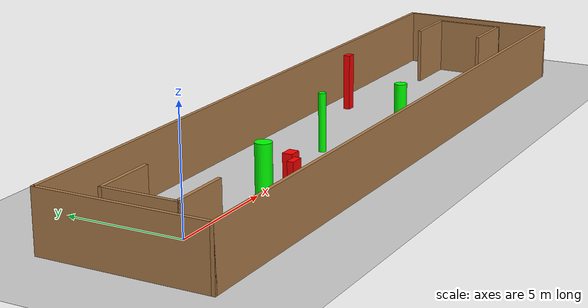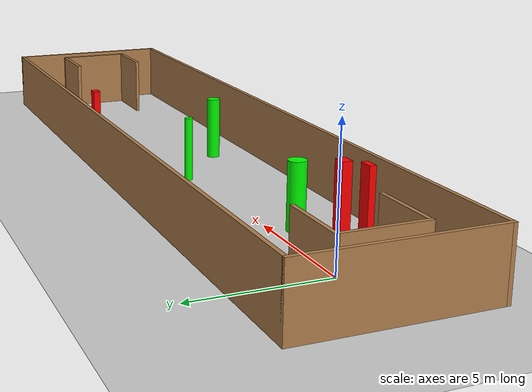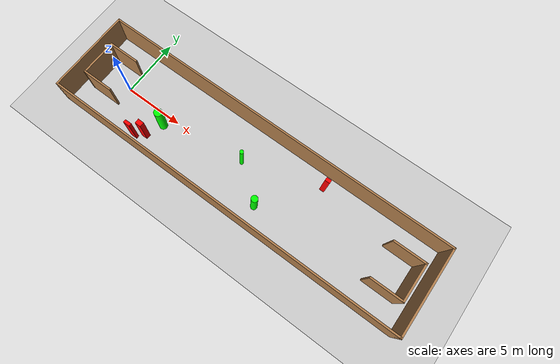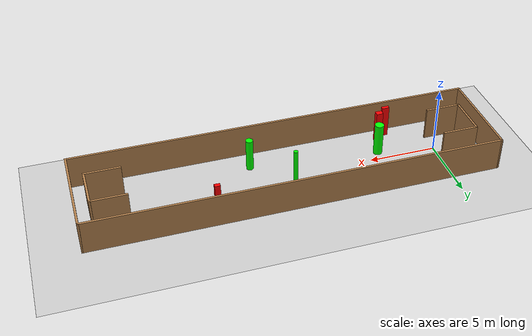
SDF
<sdf version="1.7">
 <world name="default">
  <light name="sun" type="directional">
   <pose>0 0 10 0 -0 0</pose>
   <diffuse>0.8 0.8 0.8 1</diffuse>
   <specular>0.2 0.2 0.2 1</specular>
   <attenuation>
    <range>1000</range>
    <constant>0.9</constant>
    <linear>0.01</linear>
    <quadratic>0.001</quadratic>
   </attenuation>
   <direction>-0.5 0.1 -0.9</direction>
   <spot><inner_angle>0</inner_angle><outer_angle>0</outer_angle><falloff>0</falloff></spot>
  </light>
  <model name="ground_plane">
   <static>1</static>
   <link name="link">
    <collision name="collision">
     <geometry><plane><normal>0 0 1</normal><size>100 100</size></plane></geometry>
     <surface>
      <contact><collide_bitmask>65535</collide_bitmask></contact>
      <friction><ode><mu>100</mu><mu2>50</mu2></ode></friction>
     </surface>
    </collision>
    <visual name="visual">
     <cast_shadows>0</cast_shadows>
     <geometry><plane><normal>0 0 1</normal><size>100 100</size></plane></geometry>
     <material>
      <script><uri>file://media/materials/scripts/gazebo.material</uri><name>Gazebo/Grey</name></script>
     </material>
    </visual>
   </link>
  </model>
  <gravity>0 0 -9.8</gravity>
  <magnetic_field>6e-06 2.3e-05 -4.2e-05</magnetic_field>
  <atmosphere type="adiabatic"/>
  <physics type="ode">
   <max_step_size>0.001</max_step_size>
   <real_time_factor>1</real_time_factor>
   <real_time_update_rate>1000</real_time_update_rate>
  </physics>
  <scene><ambient>0.4 0.4 0.4 1</ambient><background>0.7 0.7 0.7 1</background><shadows>1</shadows></scene>
  <spherical_coordinates>
   <surface_model>EARTH_WGS84</surface_model>
   <latitude_deg>0</latitude_deg>
   <longitude_deg>0</longitude_deg>
   <elevation>0</elevation>
   <heading_deg>0</heading_deg>
  </spherical_coordinates>
  <model name="my_base_walls">
   <link name="Wall_0">
    <collision name="Wall_0_Collision">
     <geometry><box><size>7.15 0.15 2.5</size></box></geometry>
     <pose>0 0 1.25 0 -0 0</pose>
    </collision>
    <visual name="Wall_0_Visual">
     <pose>0 0 1.25 0 -0 0</pose>
     <geometry><box><size>7.15 0.15 2.5</size></box></geometry>
     <material>
      <script><uri>file://media/materials/scripts/gazebo.material</uri><name>Gazebo/Wood</name></script>
      <ambient>1 1 1 1</ambient>
     </material>
     <meta><layer>0</layer></meta>
    </visual>
    <pose>-15 0 0 0 -0 1.5708</pose>
   </link>
   <link name="Wall_10">
    <collision name="Wall_10_Collision">
     <geometry><box><size>2.65 0.15 2.5</size></box></geometry>
     <pose>0 0 1.25 0 -0 0</pose>
    </collision>
    <visual name="Wall_10_Visual">
     <pose>0 0 1.25 0 -0 0</pose>
     <geometry><box><size>2.65 0.15 2.5</size></box></geometry>
     <material>
      <script><uri>file://media/materials/scripts/gazebo.material</uri><name>Gazebo/Wood</name></script>
      <ambient>1 1 1 1</ambient>
     </material>
     <meta><layer>0</layer></meta>
    </visual>
    <pose>-12.75 -1.5 0 0 -0 0</pose>
   </link>
   <link name="Wall_12">
    <collision name="Wall_12_Collision">
     <geometry><box><size>2.65 0.15 2.5</size></box></geometry>
     <pose>0 0 1.25 0 -0 0</pose>
    </collision>
    <visual name="Wall_12_Visual">
     <pose>0 0 1.25 0 -0 0</pose>
     <geometry><box><size>2.65 0.15 2.5</size></box></geometry>
     <material>
      <script><uri>file://media/materials/scripts/gazebo.material</uri><name>Gazebo/Wood</name></script>
      <ambient>1 1 1 1</ambient>
     </material>
     <meta><layer>0</layer></meta>
    </visual>
    <pose>-12.75 1.5 0 0 -0 0</pose>
   </link>
   <link name="Wall_14">
    <collision name="Wall_14_Collision">
     <geometry><box><size>3.15 0.15 2.5</size></box></geometry>
     <pose>0 0 1.25 0 -0 0</pose>
    </collision>
    <visual name="Wall_14_Visual">
     <pose>0 0 1.25 0 -0 0</pose>
     <geometry><box><size>3.15 0.15 2.5</size></box></geometry>
     <material>
      <script><uri>file://media/materials/scripts/gazebo.material</uri><name>Gazebo/Wood</name></script>
      <ambient>1 1 1 1</ambient>
     </material>
     <meta><layer>0</layer></meta>
    </visual>
    <pose>14 0 0 0 -0 -1.5708</pose>
   </link>
   <link name="Wall_15">
    <collision name="Wall_15_Collision">
     <geometry><box><size>2.65 0.15 2.5</size></box></geometry>
     <pose>0 0 1.25 0 -0 0</pose>
    </collision>
    <visual name="Wall_15_Visual">
     <pose>0 0 1.25 0 -0 0</pose>
     <geometry><box><size>2.65 0.15 2.5</size></box></geometry>
     <material>
      <script><uri>file://media/materials/scripts/gazebo.material</uri><name>Gazebo/Wood</name></script>
      <ambient>1 1 1 1</ambient>
     </material>
     <meta><layer>0</layer></meta>
    </visual>
    <pose>12.75 -1.5 0 0 -0 3.14159</pose>
   </link>
   <link name="Wall_17">
    <collision name="Wall_17_Collision">
     <geometry><box><size>2.65 0.15 2.5</size></box></geometry>
     <pose>0 0 1.25 0 -0 0</pose>
    </collision>
    <visual name="Wall_17_Visual">
     <pose>0 0 1.25 0 -0 0</pose>
     <geometry><box><size>2.65 0.15 2.5</size></box></geometry>
     <material>
      <script><uri>file://media/materials/scripts/gazebo.material</uri><name>Gazebo/Wood</name></script>
      <ambient>1 1 1 1</ambient>
     </material>
     <meta><layer>0</layer></meta>
    </visual>
    <pose>12.75 1.5 0 0 -0 3.14159</pose>
   </link>
   <link name="Wall_2">
    <collision name="Wall_2_Collision">
     <geometry><box><size>30.15 0.15 2.5</size></box></geometry>
     <pose>0 0 1.25 0 -0 0</pose>
    </collision>
    <visual name="Wall_2_Visual">
     <pose>0 0 1.25 0 -0 0</pose>
     <geometry><box><size>30.15 0.15 2.5</size></box></geometry>
     <material>
      <script><uri>file://media/materials/scripts/gazebo.material</uri><name>Gazebo/Wood</name></script>
      <ambient>1 1 1 1</ambient>
     </material>
     <meta><layer>0</layer></meta>
    </visual>
    <pose>-0 -3.5 0 0 -0 0</pose>
   </link>
   <link name="Wall_4">
    <collision name="Wall_4_Collision">
     <geometry><box><size>30.15 0.15 2.5</size></box></geometry>
     <pose>0 0 1.25 0 -0 0</pose>
    </collision>
    <visual name="Wall_4_Visual">
     <pose>0 0 1.25 0 -0 0</pose>
     <geometry><box><size>30.15 0.15 2.5</size></box></geometry>
     <material>
      <script><uri>file://media/materials/scripts/gazebo.material</uri><name>Gazebo/Wood</name></script>
      <ambient>1 1 1 1</ambient>
     </material>
     <meta><layer>0</layer></meta>
    </visual>
    <pose>-0 3.5 0 0 -0 0</pose>
   </link>
   <link name="Wall_6">
    <collision name="Wall_6_Collision">
     <geometry><box><size>7.15 0.15 2.5</size></box></geometry>
     <pose>0 0 1.25 0 -0 0</pose>
    </collision>
    <visual name="Wall_6_Visual">
     <pose>0 0 1.25 0 -0 0</pose>
     <geometry><box><size>7.15 0.15 2.5</size></box></geometry>
     <material>
      <script><uri>file://media/materials/scripts/gazebo.material</uri><name>Gazebo/Wood</name></script>
      <ambient>1 1 1 1</ambient>
     </material>
     <meta><layer>0</layer></meta>
    </visual>
    <pose>15 0 0 0 -0 -1.5708</pose>
   </link>
   <link name="Wall_9">
    <collision name="Wall_9_Collision">
     <geometry><box><size>3.15 0.15 2.5</size></box></geometry>
     <pose>0 0 1.25 0 -0 0</pose>
    </collision>
    <visual name="Wall_9_Visual">
     <pose>0 0 1.25 0 -0 0</pose>
     <geometry><box><size>3.15 0.15 2.5</size></box></geometry>
     <material>
      <script><uri>file://media/materials/scripts/gazebo.material</uri><name>Gazebo/Wood</name></script>
      <ambient>1 1 1 1</ambient>
     </material>
     <meta><layer>0</layer></meta>
    </visual>
    <pose>-14 0 0 0 -0 -1.5708</pose>
   </link>
   <static>1</static>
   <pose>11.5 0 0 0 -0 0</pose>
  </model>
  <model name="cylinder1">
   <static>1</static>
   <link name="link">
    <inertial>
     <mass>1</mass>
     <inertia><ixx>0.5</ixx><ixy>0</ixy><ixz>0</ixz><iyy>0.5</iyy><iyz>0</iyz><izz>1</izz></inertia>
    </inertial>
    <collision name="collision">
     <geometry><cylinder><radius>0.1609751300408309</radius><length>2.5</length></cylinder></geometry>
    </collision>
    <visual name="visual">
     <geometry><cylinder><radius>0.1609751300408309</radius><length>2.5</length></cylinder></geometry>
     <material>
      <ambient>0 1 0 1</ambient>
      <diffuse>0 1 0 1</diffuse>
      <specular>0.1 0.1 0.1 1</specular>
      <emissive>0 0 0 0</emissive>
     </material>
    </visual>
   </link>
   <pose>10.947049865914876 0.4323442922492946 1.25 0 0 0</pose>
  </model>
  <model name="cylinder2">
   <static>1</static>
   <link name="link">
    <inertial>
     <mass>1</mass>
     <inertia><ixx>0.5</ixx><ixy>0</ixy><ixz>0</ixz><iyy>0.5</iyy><iyz>0</iyz><izz>1</izz></inertia>
    </inertial>
    <collision name="collision">
     <geometry><cylinder><radius>0.33409682309089644</radius><length>2.5</length></cylinder></geometry>
    </collision>
    <visual name="visual">
     <geometry><cylinder><radius>0.33409682309089644</radius><length>2.5</length></cylinder></geometry>
     <material>
      <ambient>0 1 0 1</ambient>
      <diffuse>0 1 0 1</diffuse>
      <specular>0.1 0.1 0.1 1</specular>
      <emissive>0 0 0 0</emissive>
     </material>
    </visual>
   </link>
   <pose>4.145426325222873 -0.7939542524903853 1.25 0 0 0</pose>
  </model>
  <model name="cylinder3">
   <static>1</static>
   <link name="link">
    <inertial>
     <mass>1</mass>
     <inertia><ixx>0.5</ixx><ixy>0</ixy><ixz>0</ixz><iyy>0.5</iyy><iyz>0</iyz><izz>1</izz></inertia>
    </inertial>
    <collision name="collision">
     <geometry><cylinder><radius>0.2632634194330177</radius><length>2.5</length></cylinder></geometry>
    </collision>
    <visual name="visual">
     <geometry><cylinder><radius>0.2632634194330177</radius><length>2.5</length></cylinder></geometry>
     <material>
      <ambient>0 1 0 1</ambient>
      <diffuse>0 1 0 1</diffuse>
      <specular>0.1 0.1 0.1 1</specular>
      <emissive>0 0 0 0</emissive>
     </material>
    </visual>
   </link>
   <pose>13.72898942279903 -1.792322376512919 1.25 0 0 0</pose>
  </model>
  <model name="box1">
   <static>1</static>
   <link name="link">
    <inertial>
     <mass>1</mass>
     <inertia><ixx>0.083</ixx><ixy>0</ixy><ixz>0</ixz><iyy>0.083</iyy><iyz>0</iyz><izz>0.083</izz></inertia>
    </inertial>
    <collision name="collision">
     <geometry><box><size>0.5047647850267065 0.3905151173985304 2.5</size></box></geometry>
    </collision>
    <visual name="visual">
     <geometry><box><size>0.5047647850267065 0.3905151173985304 2.5</size></box></geometry>
     <material>
      <ambient>1 0 0 1</ambient>
      <diffuse>1 0 0 1</diffuse>
      <specular>0.1 0.1 0.1 1</specular>
      <emissive>0 0 0 0</emissive>
     </material>
    </visual>
    <sensor name="my_contact" type="contact">
     <contact><collision>box_collision</collision><topic>__default_topic__</topic></contact>
    </sensor>
   </link>
   <pose>3.588109149407206 -2.2421999995341637 1.25 0 0 0</pose>
  </model>
  <model name="box2">
   <static>1</static>
   <link name="link">
    <inertial>
     <mass>1</mass>
     <inertia><ixx>0.083</ixx><ixy>0</ixy><ixz>0</ixz><iyy>0.083</iyy><iyz>0</iyz><izz>0.083</izz></inertia>
    </inertial>
    <collision name="collision">
     <geometry><box><size>0.4058084373205736 0.2842080211084453 2.5</size></box></geometry>
    </collision>
    <visual name="visual">
     <geometry><box><size>0.4058084373205736 0.2842080211084453 2.5</size></box></geometry>
     <material>
      <ambient>1 0 0 1</ambient>
      <diffuse>1 0 0 1</diffuse>
      <specular>0.1 0.1 0.1 1</specular>
      <emissive>0 0 0 0</emissive>
     </material>
    </visual>
    <sensor name="my_contact" type="contact">
     <contact><collision>box_collision</collision><topic>__default_topic__</topic></contact>
    </sensor>
   </link>
   <pose>17.09953194420268 2.3793343079149807 1.25 0 0 0</pose>
  </model>
  <model name="box3">
   <static>1</static>
   <link name="link">
    <inertial>
     <mass>1</mass>
     <inertia><ixx>0.083</ixx><ixy>0</ixy><ixz>0</ixz><iyy>0.083</iyy><iyz>0</iyz><izz>0.083</izz></inertia>
    </inertial>
    <collision name="collision">
     <geometry><box><size>0.5545706044043084 0.2553911349998513 2.5</size></box></geometry>
    </collision>
    <visual name="visual">
     <geometry><box><size>0.5545706044043084 0.2553911349998513 2.5</size></box></geometry>
     <material>
      <ambient>1 0 0 1</ambient>
      <diffuse>1 0 0 1</diffuse>
      <specular>0.1 0.1 0.1 1</specular>
      <emissive>0 0 0 0</emissive>
     </material>
    </visual>
    <sensor name="my_contact" type="contact">
     <contact><collision>box_collision</collision><topic>__default_topic__</topic></contact>
    </sensor>
   </link>
   <pose>2.88595446338781 -2.772096446277491 1.25 0 0 0</pose>
  </model>
 </world>
</sdf>
